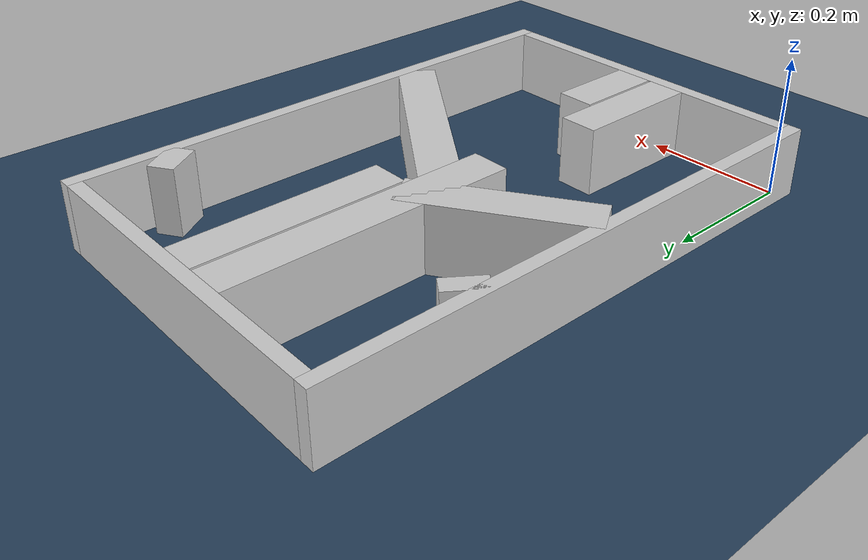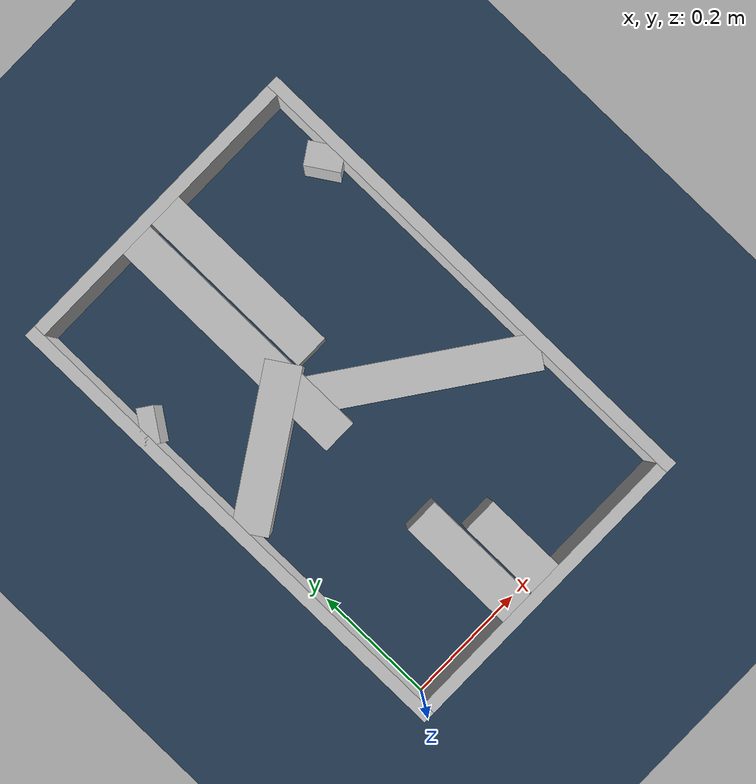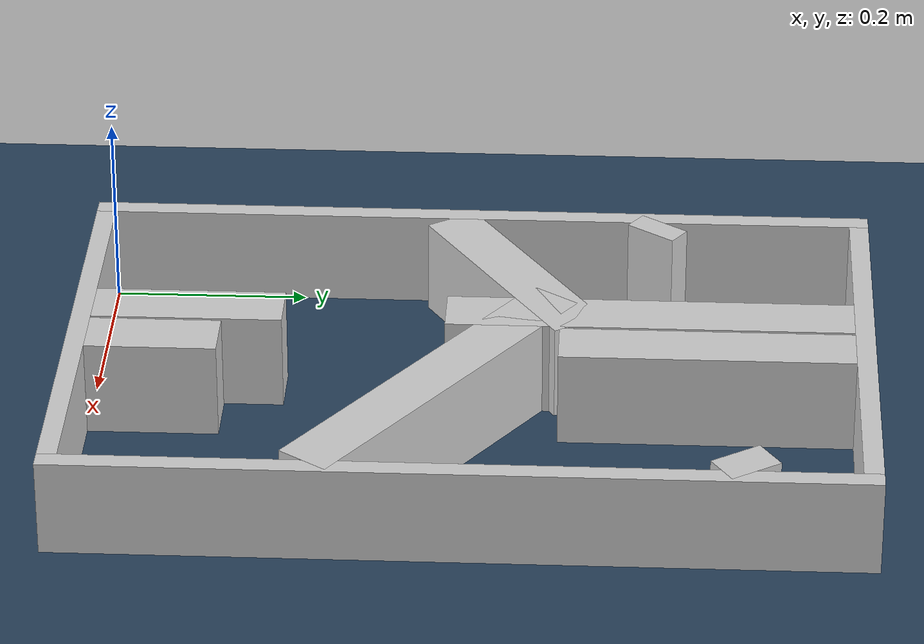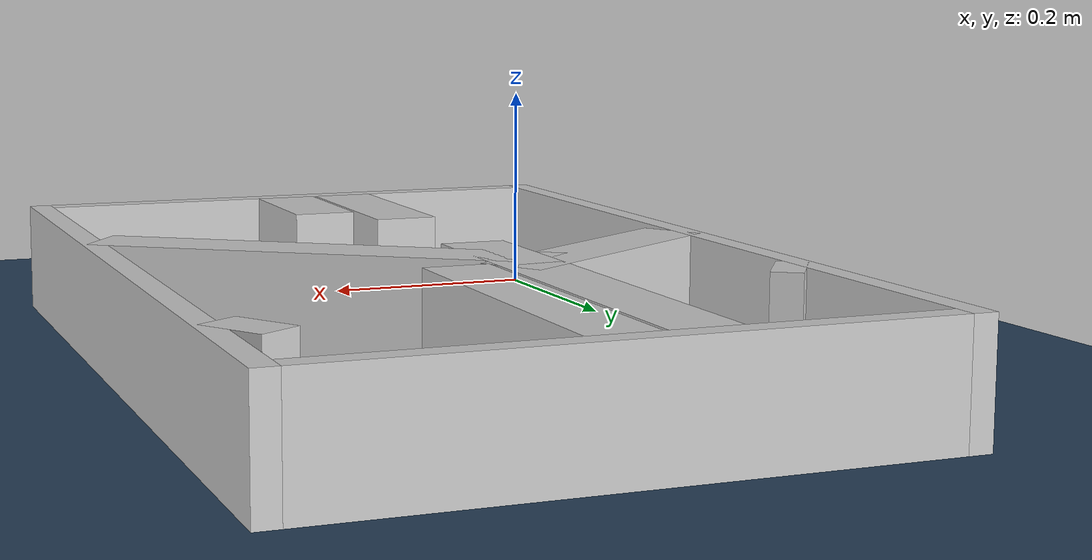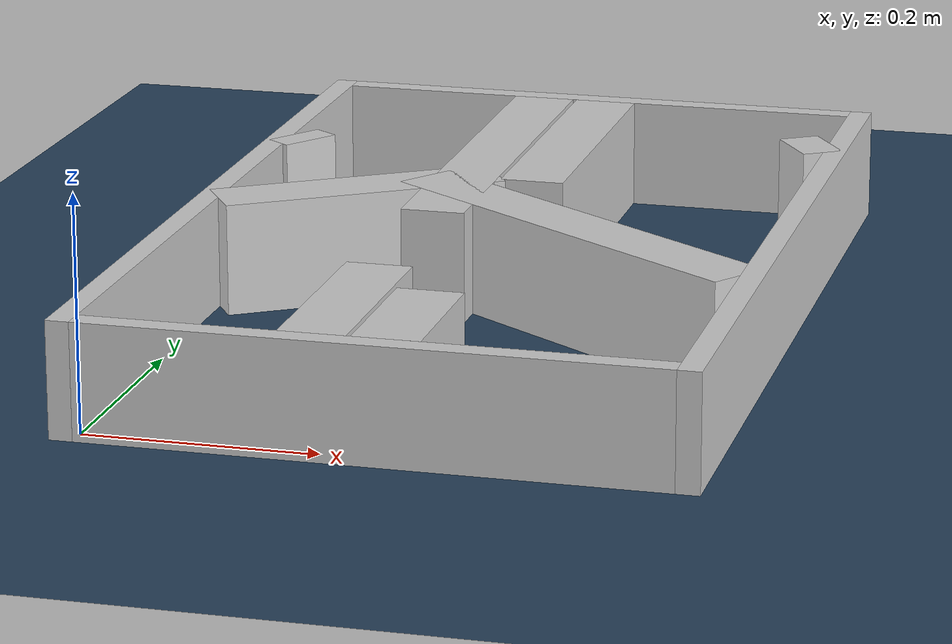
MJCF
<?xml version="1.0" ?>
<mujoco model="generated_real_template">
  <compiler angle="degree"/>
  <option timestep="0.002" integrator="implicitfast" iterations="100" cone="elliptic"/>
  <default>
    <geom density="1"/>
  </default>
  <asset>
    <texture builtin="gradient" height="3072" rgb1="0.3 0.5 0.7" rgb2="0 0 0" type="skybox" width="512"/>
    <texture builtin="checker" height="300" mark="edge" markrgb="0.8 0.8 0.8" name="groundplane" rgb1="0.2 0.3 0.4" rgb2="0.1 0.2 0.3" type="2d" width="300"/>
    <material name="groundplane" reflectance="0.2" texrepeat="5 5" texture="groundplane" texuniform="true"/>
  </asset>
  <worldbody>
    <light dir="0 0 -1" directional="true" pos="0 0 1.5"/>
    <geom name="floor" type="plane" condim="4" friction="0.5 0.005 0.001" material="groundplane" size="0 0 0.05"/>
    <body name="walls">
      <geom name="wall_boundary_left" type="box" condim="4" friction="1.0 0.005 0.0001" rgba="0.8 0.8 0.8 1" pos="-0.010000 0.387500 0.050000" euler="0 0 0.000000" size="0.010000 0.407500 0.050000"/>
      <geom name="wall_boundary_right" type="box" condim="4" friction="1.0 0.005 0.0001" rgba="0.8 0.8 0.8 1" pos="0.500000 0.387500 0.050000" euler="0 0 0.000000" size="0.010000 0.407500 0.050000"/>
      <geom name="wall_boundary_bottom" type="box" condim="4" friction="1.0 0.005 0.0001" rgba="0.8 0.8 0.8 1" pos="0.245000 -0.010000 0.050000" euler="0 0 0.000000" size="0.245000 0.010000 0.050000"/>
      <geom name="wall_boundary_top" type="box" condim="4" friction="1.0 0.005 0.0001" rgba="0.8 0.8 0.8 1" pos="0.245000 0.785000 0.050000" euler="0 0 0.000000" size="0.245000 0.010000 0.050000"/>
      <geom name="wall_inner_1_1" type="box" condim="4" friction="1.0 0.005 0.0001" rgba="0.8 0.8 0.8 1" pos="0.108015 0.426014 0.050000" euler="0 0 32.890824" size="0.128634 0.028500 0.050000"/>
      <geom name="wall_inner_1_2" type="box" condim="4" friction="1.0 0.005 0.0001" rgba="0.8 0.8 0.8 1" pos="0.474083 0.662751 0.050000" euler="0 0 32.890824" size="0.018956 0.028500 0.050000"/>
      <geom name="wall_inner_2_1" type="box" condim="4" friction="1.0 0.005 0.0001" rgba="0.8 0.8 0.8 1" pos="0.194136 0.097222 0.050000" euler="0 0 90.000000" size="0.097222 0.028500 0.050000"/>
      <geom name="wall_inner_2_2" type="box" condim="4" friction="1.0 0.005 0.0001" rgba="0.8 0.8 0.8 1" pos="0.194136 0.567602 0.050000" euler="0 0 90.000000" size="0.207398 0.028500 0.050000"/>
      <geom name="wall_inner_3_1" type="box" condim="4" friction="1.0 0.005 0.0001" rgba="0.8 0.8 0.8 1" pos="0.254633 0.066740 0.050000" euler="0 0 90.000000" size="0.066740 0.028500 0.050000"/>
      <geom name="wall_inner_3_2" type="box" condim="4" friction="1.0 0.005 0.0001" rgba="0.8 0.8 0.8 1" pos="0.254633 0.625787 0.050000" euler="0 0 90.000000" size="0.149213 0.028500 0.050000"/>
      <geom name="wall_inner_4_1" type="box" condim="4" friction="1.0 0.005 0.0001" rgba="0.8 0.8 0.8 1" pos="0.323795 0.353198 0.050000" euler="0 0 144.842303" size="0.203292 0.028500 0.050000"/>
      <geom name="wall_inner_4_2" type="box" condim="4" friction="1.0 0.005 0.0001" rgba="0.8 0.8 0.8 1" pos="0.010757 0.573675 0.050000" euler="0 0 144.842303" size="0.013158 0.028500 0.050000"/>
    </body>
  </worldbody>
</mujoco>
